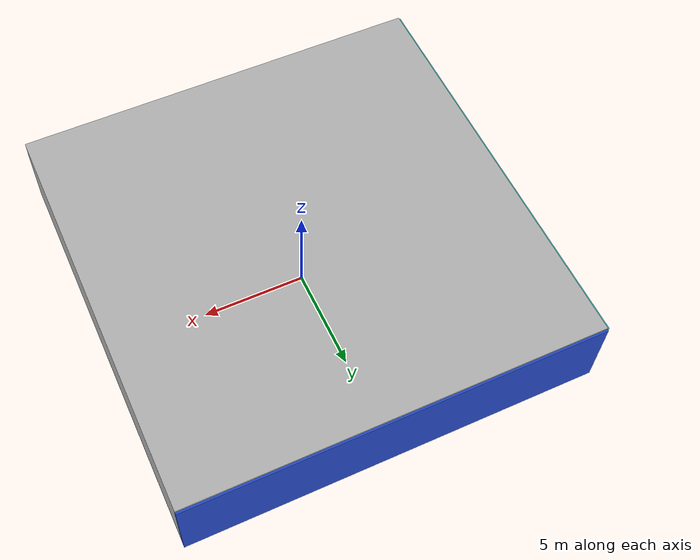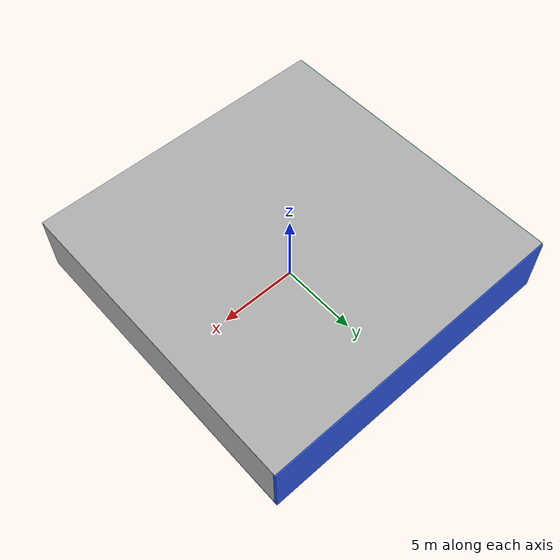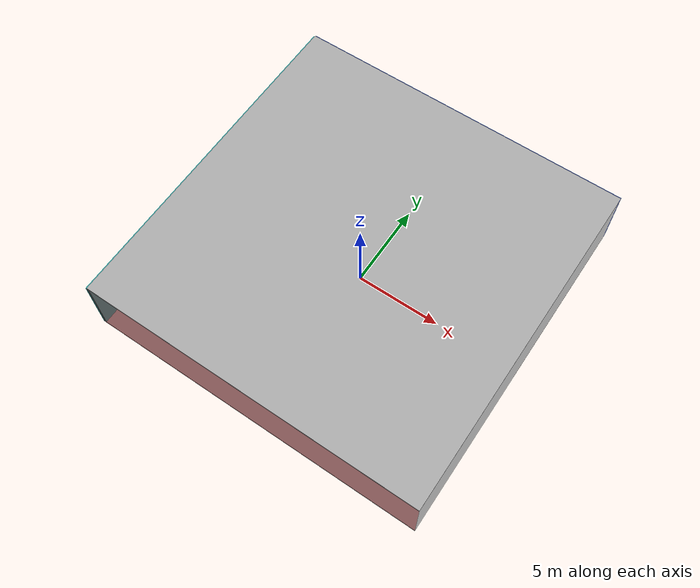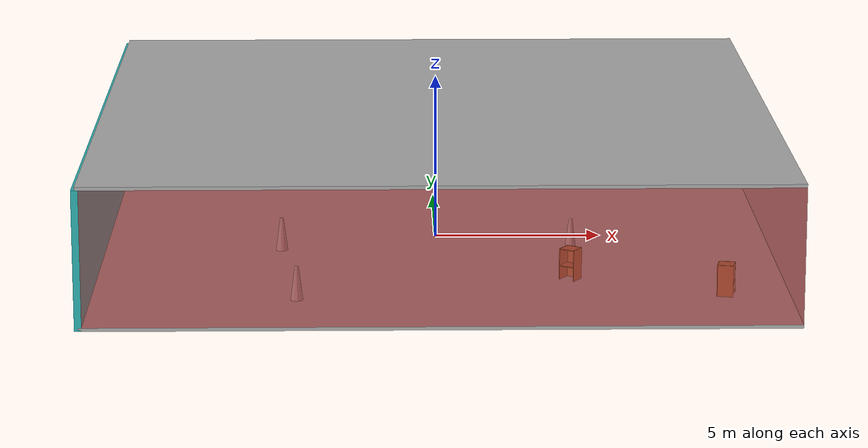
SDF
<sdf version="1.4">
 <world name="default">
  <physics type="ode">
   <max_step_size>0.001</max_step_size>
   <real_time_factor>1</real_time_factor>
   <real_time_update_rate>1000</real_time_update_rate>
   <gravity>0 0 -9.8</gravity>
  </physics>
  <scene><ambient>0.4 0.4 0.4 1</ambient><background>0.7 0.7 0.7 1</background><shadows>1</shadows></scene>
  <model name="Surrounding">
   <static>1</static>
   <link name="Ceiling">
    <collision name="Ceiling_Collision"><geometry><box><size>20 20 0.1</size></box></geometry></collision>
    <visual name="Ceiling_Visual">
     <geometry><box><size>20 20 0.1</size></box></geometry>
     <material>
      <script><uri>file://media/materials/scripts/gazebo.material</uri><name>Gazebo/LightOn</name></script>
     </material>
    </visual>
    <pose>0 0 4.05 0 0 0</pose>
   </link>
   <link name="Wall_South">
    <collision name="Wall_South_Collision">
     <geometry><box><size>20 0 4</size></box></geometry>
     <pose>0 0 2 0 -0 0</pose>
    </collision>
    <visual name="Wall_South_Visual">
     <pose>0 0 2 0 -0 0</pose>
     <geometry><box><size>20 0 4</size></box></geometry>
     <material>
      <script><uri>file://media/materials/scripts/gazebo.material</uri><name>Gazebo/RedTransparent</name></script>
     </material>
    </visual>
    <velocity_decay><linear>0</linear><angular>0</angular></velocity_decay>
    <pose>0 -10 0 0 -0 0</pose>
   </link>
   <link name="Wall_East">
    <collision name="Wall_21_Collision">
     <geometry><box><size>20 0 4</size></box></geometry>
     <pose>0 0 2 0 -0 0</pose>
    </collision>
    <visual name="Wall_21_Visual">
     <pose>0 0 2 0 -0 0</pose>
     <geometry><box><size>20 0 4</size></box></geometry>
     <material>
      <script><uri>file://media/materials/scripts/gazebo.material</uri><name>Gazebo/LightOn</name></script>
     </material>
    </visual>
    <velocity_decay><linear>0</linear><angular>0</angular></velocity_decay>
    <pose>10 0 0 0 -0 1.5708</pose>
   </link>
   <link name="Wall_North">
    <collision name="Wall_22_Collision">
     <geometry><box><size>20 0.2 4</size></box></geometry>
     <pose>0 0 2 0 -0 0</pose>
    </collision>
    <visual name="Wall_22_Visual">
     <pose>0 0 2 0 -0 0</pose>
     <geometry><box><size>20 0.2 4</size></box></geometry>
     <material>
      <script><uri>file://media/materials/scripts/gazebo.material</uri><name>Gazebo/Blue</name></script>
     </material>
    </visual>
    <velocity_decay><linear>0</linear><angular>0</angular></velocity_decay>
    <pose>0 10 0 0 -0 0</pose>
   </link>
   <link name="Wall_West">
    <collision name="Wall_23_Collision">
     <geometry><box><size>20 0.2 4</size></box></geometry>
     <pose>0 0 2 0 -0 0</pose>
    </collision>
    <visual name="Wall_23_Visual">
     <pose>0 0 2 0 -0 0</pose>
     <geometry><box><size>20 0.2 4</size></box></geometry>
     <material>
      <script>
       <uri>file://media/materials/scripts/gazebo.material</uri>
       <name>Gazebo/TurquoiseGlowOutline</name>
      </script>
     </material>
    </visual>
    <velocity_decay><linear>0</linear><angular>0</angular></velocity_decay>
    <pose>-10 0 0 0 0 -1.5708</pose>
   </link>
   <link name="Ground_link">
    <collision name="collision">
     <pose>0 0 .05 0 -0 0</pose>
     <geometry><box><size>20 20 0.1</size></box></geometry>
    </collision>
    <visual name="visual">
     <pose>0 0 .05 0 -0 0</pose>
     <geometry><box><size>20 20 0.1</size></box></geometry>
     <material>
      <script><uri>file://media/materials/scripts/gazebo.material</uri><name>Gazebo/PioneerBody</name></script>
     </material>
    </visual>
   </link>
   <static>1</static>
  </model>
  <spherical_coordinates>
   <surface_model>EARTH_WGS84</surface_model>
   <latitude_deg>0</latitude_deg>
   <longitude_deg>0</longitude_deg>
   <elevation>0</elevation>
   <heading_deg>0</heading_deg>
  </spherical_coordinates>
  <light name="lightball_0" type="diffuse">
   <diffuse>0.8 0.8 0.8 1</diffuse>
   <specular>0.2 0.2 0.2 1</specular>
   <attenuation>
    <range>100</range>
    <constant>0.7</constant>
    <linear>0.01</linear>
    <quadratic>0.001</quadratic>
   </attenuation>
   <direction>-0.5 0.1 -0.9</direction>
   <pose>-7.92441598574 -3.3529215888 3.00180800232 0 0 0</pose>
  </light>
  <light name="lightball_1" type="diffuse">
   <diffuse>0.8 0.8 0.8 1</diffuse>
   <specular>0.2 0.2 0.2 1</specular>
   <attenuation>
    <range>100</range>
    <constant>0.7</constant>
    <linear>0.01</linear>
    <quadratic>0.001</quadratic>
   </attenuation>
   <direction>-0.5 0.1 -0.9</direction>
   <pose>9.61118232637 -3.69294364561 3.12252049314 0 0 0</pose>
  </light>
  <light name="lightball_2" type="diffuse">
   <diffuse>0.8 0.8 0.8 1</diffuse>
   <specular>0.2 0.2 0.2 1</specular>
   <attenuation>
    <range>100</range>
    <constant>0.7</constant>
    <linear>0.01</linear>
    <quadratic>0.001</quadratic>
   </attenuation>
   <direction>-0.5 0.1 -0.9</direction>
   <pose>-8.14172416284 8.34825803165 1.70232932406 0 0 0</pose>
  </light>
  <light name="lightball_3" type="diffuse">
   <diffuse>0.8 0.8 0.8 1</diffuse>
   <specular>0.2 0.2 0.2 1</specular>
   <attenuation>
    <range>100</range>
    <constant>0.7</constant>
    <linear>0.01</linear>
    <quadratic>0.001</quadratic>
   </attenuation>
   <direction>-0.5 0.1 -0.9</direction>
   <pose>-4.45279391684 -7.29268164095 3.40870731367 0 0 0</pose>
  </light>
  <light name="lightball_4" type="diffuse">
   <diffuse>0.8 0.8 0.8 1</diffuse>
   <specular>0.2 0.2 0.2 1</specular>
   <attenuation>
    <range>100</range>
    <constant>0.7</constant>
    <linear>0.01</linear>
    <quadratic>0.001</quadratic>
   </attenuation>
   <direction>-0.5 0.1 -0.9</direction>
   <pose>-6.98148409724 3.13060712294 2.22307925737 0 0 0</pose>
  </light>
  <light name="lightball_5" type="diffuse">
   <diffuse>0.8 0.8 0.8 1</diffuse>
   <specular>0.2 0.2 0.2 1</specular>
   <attenuation>
    <range>100</range>
    <constant>0.7</constant>
    <linear>0.01</linear>
    <quadratic>0.001</quadratic>
   </attenuation>
   <direction>-0.5 0.1 -0.9</direction>
   <pose>3.91719468069 -5.50433310163 3.72833446979 0 0 0</pose>
  </light>
  <light name="lightball_6" type="diffuse">
   <diffuse>0.8 0.8 0.8 1</diffuse>
   <specular>0.2 0.2 0.2 1</specular>
   <attenuation>
    <range>100</range>
    <constant>0.7</constant>
    <linear>0.01</linear>
    <quadratic>0.001</quadratic>
   </attenuation>
   <direction>-0.5 0.1 -0.9</direction>
   <pose>-2.89422573583 7.9959850198 2.2053237429 0 0 0</pose>
  </light>
  <light name="lightball_7" type="diffuse">
   <diffuse>0.8 0.8 0.8 1</diffuse>
   <specular>0.2 0.2 0.2 1</specular>
   <attenuation>
    <range>100</range>
    <constant>0.7</constant>
    <linear>0.01</linear>
    <quadratic>0.001</quadratic>
   </attenuation>
   <direction>-0.5 0.1 -0.9</direction>
   <pose>8.19658284122 -2.22108024632 3.65419288135 0 0 0</pose>
  </light>
  <light name="lightball_8" type="diffuse">
   <diffuse>0.8 0.8 0.8 1</diffuse>
   <specular>0.2 0.2 0.2 1</specular>
   <attenuation>
    <range>100</range>
    <constant>0.7</constant>
    <linear>0.01</linear>
    <quadratic>0.001</quadratic>
   </attenuation>
   <direction>-0.5 0.1 -0.9</direction>
   <pose>-9.0151335768 -6.11070058546 2.94521331134 0 0 0</pose>
  </light>
  <light name="lightball_9" type="diffuse">
   <diffuse>0.8 0.8 0.8 1</diffuse>
   <specular>0.2 0.2 0.2 1</specular>
   <attenuation>
    <range>100</range>
    <constant>0.7</constant>
    <linear>0.01</linear>
    <quadratic>0.001</quadratic>
   </attenuation>
   <direction>-0.5 0.1 -0.9</direction>
   <pose>1.68170912768 -8.82065754589 0.874094422374 0 0 0</pose>
  </light>
  <light name="lightball_10" type="diffuse">
   <diffuse>0.8 0.8 0.8 1</diffuse>
   <specular>0.2 0.2 0.2 1</specular>
   <attenuation>
    <range>100</range>
    <constant>0.7</constant>
    <linear>0.01</linear>
    <quadratic>0.001</quadratic>
   </attenuation>
   <direction>-0.5 0.1 -0.9</direction>
   <pose>-3.72001102179 -7.78404910003 0.590956598228 0 0 0</pose>
  </light>
  <light name="lightball_11" type="diffuse">
   <diffuse>0.8 0.8 0.8 1</diffuse>
   <specular>0.2 0.2 0.2 1</specular>
   <attenuation>
    <range>100</range>
    <constant>0.7</constant>
    <linear>0.01</linear>
    <quadratic>0.001</quadratic>
   </attenuation>
   <direction>-0.5 0.1 -0.9</direction>
   <pose>2.99495394515 -3.3109306204 2.05937191953 0 0 0</pose>
  </light>
  <light name="lightball_12" type="diffuse">
   <diffuse>0.8 0.8 0.8 1</diffuse>
   <specular>0.2 0.2 0.2 1</specular>
   <attenuation>
    <range>100</range>
    <constant>0.7</constant>
    <linear>0.01</linear>
    <quadratic>0.001</quadratic>
   </attenuation>
   <direction>-0.5 0.1 -0.9</direction>
   <pose>5.49211376009 -3.80546938165 1.1977069281 0 0 0</pose>
  </light>
  <include>
   <uri>model://construction_cone</uri>
   <pose>-4.0496598866 -7.26056382413 0 0 0 2.73667615557</pose>
  </include>
  <include>
   <uri>model://construction_cone</uri>
   <pose>-4.62542486158 -1.89269815357 0 0 0 1.9837819526</pose>
  </include>
  <include><uri>model://cabinet</uri><pose>3.82271682381 -5.20912184856 0 0 0 0.98152793033</pose></include>
  <include>
   <uri>model://construction_cone</uri>
   <pose>4.00062488297 -2.14780514183 0 0 0 2.39538940363</pose>
  </include>
  <include><uri>model://cabinet</uri><pose>8.16759197621 -6.94680773661 0 0 0 2.9237194232</pose></include>
 </world>
</sdf>

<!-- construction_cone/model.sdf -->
<sdf version="1.5">
  <model name="Construction Cone">
    <link name="link">
      <collision name="collision">
        <geometry>
          <mesh>
            <scale>10 10 10</scale>
            <uri>file://isr-testbed/construction_cone/meshes/construction_cone.dae</uri>
          </mesh>
        </geometry>
      </collision>
      <visual name="visual">
        <geometry>
          <mesh>
            <scale>10 10 10</scale>
            <uri>file://isr-testbed/construction_cone/meshes/construction_cone.dae</uri>
          </mesh>
        </geometry>
      </visual>
    </link>
  </model>
</sdf>

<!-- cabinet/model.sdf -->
<sdf version="1.5">
  <model name="cabinet">
    <static>true</static>
    <link name="cabinet_bottom_plate">
      <inertial>
        <pose>0 0 -1 0 0 0</pose>
        <inertia>
          <ixx>2.050000</ixx>
          <ixy>0</ixy>
          <ixz>0</ixz>
          <iyy>2.050000</iyy>
          <iyz>0</iyz>
          <izz>2.050000</izz>
        </inertia>
        <mass>25.000000</mass>
      </inertial>
      <collision name="cabinet_bottom_plate_geom">
        <pose>0 0 0.010000 0 0 0</pose>
        <geometry>
          <box>
            <size>0.450000 0.450000 0.020000</size>
          </box>
        </geometry>
      </collision>
      <visual name="cabinet_bottom_plate_geom_visual">
        <pose>0 0 0.010000 0 0 0</pose>
        <geometry>
          <box>
            <size>0.450000 0.450000 0.020000</size>
          </box>
        </geometry>
        <material>
          <script>
            <uri>model://media/materials/scripts/gazebo.material</uri>
            <name>Gazebo/Wood</name>
          </script>
        </material>
      </visual>
      <collision name="cabinet_bottom_plate_geom_cabinet_back_plate">
        <pose>0.235000 0 0.510000 0 0 0</pose>
        <geometry>
          <box>
            <size>0.020000 0.450000 1.020000</size>
          </box>
        </geometry>
      </collision>
      <visual name="cabinet_bottom_plate_geom_cabinet_back_plate_visual">
        <pose>0.235000 0 0.510000 0 0 0</pose>
        <geometry>
          <box>
            <size>0.020000 0.450000 1.020000</size>
          </box>
        </geometry>
        <material>
          <script>
            <uri>model://media/materials/scripts/gazebo.material</uri>
            <name>Gazebo/Wood</name>
          </script>
        </material>
      </visual>
      <collision name="cabinet_bottom_plate_geom_cabinet_left_plate">
        <pose>0 0.235000 0.510000 0 0 0</pose>
        <geometry>
          <box>
            <size>0.450000 0.020000 1.020000</size>
          </box>
        </geometry>
      </collision>
      <visual name="cabinet_bottom_plate_geom_cabinet_left_plate_visual">
        <pose>0 0.235000 0.510000 0 0 0</pose>
        <geometry>
          <box>
            <size>0.450000 0.020000 1.020000</size>
          </box>
        </geometry>
        <material>
          <script>
            <uri>model://media/materials/scripts/gazebo.material</uri>
            <name>Gazebo/Wood</name>
          </script>
        </material>
      </visual>
      <collision name="cabinet_bottom_plate_geom_cabinet_middle_plate">
        <pose>0 0 0.510000 0 0 0</pose>
        <geometry>
          <box>
            <size>0.450000 0.450000 0.020000</size>
          </box>
        </geometry>
      </collision>
      <visual name="cabinet_bottom_plate_geom_cabinet_middle_plate_visual">
        <pose>0 0 0.510000 0 0 0</pose>
        <geometry>
          <box>
            <size>0.450000 0.450000 0.020000</size>
          </box>
        </geometry>
        <material>
          <script>
            <uri>model://media/materials/scripts/gazebo.material</uri>
            <name>Gazebo/Wood</name>
          </script>
        </material>
      </visual>
      <collision name="cabinet_bottom_plate_geom_cabinet_right_plate">
        <pose>0 -0.235000 0.510000 0 0 0</pose>
        <geometry>
          <box>
            <size>0.450000 0.020000 1.020000</size>
          </box>
        </geometry>
      </collision>
      <visual name="cabinet_bottom_plate_geom_cabinet_right_plate_visual">
        <pose>0 -0.235000 0.510000 0 0 0</pose>
        <geometry>
          <box>
            <size>0.450000 0.020000 1.020000</size>
          </box>
        </geometry>
        <material>
          <script>
            <uri>model://media/materials/scripts/gazebo.material</uri>
            <name>Gazebo/Wood</name>
          </script>
        </material>
      </visual>
      <collision name="cabinet_bottom_plate_geom_cabinet_top_plate">
        <pose>0 0 1.010000 0 0 0</pose>
        <geometry>
          <box>
            <size>0.450000 0.450000 0.020000</size>
          </box>
        </geometry>
      </collision>
      <visual name="cabinet_bottom_plate_geom_cabinet_top_plate_visual">
        <pose>0 0 1.010000 0 0 0</pose>
        <geometry>
          <box>
            <size>0.450000 0.450000 0.020000</size>
          </box>
        </geometry>
        <material>
          <script>
            <uri>model://media/materials/scripts/gazebo.material</uri>
            <name>Gazebo/Wood</name>
          </script>
        </material>
      </visual>
    </link>
  </model>
</sdf>
